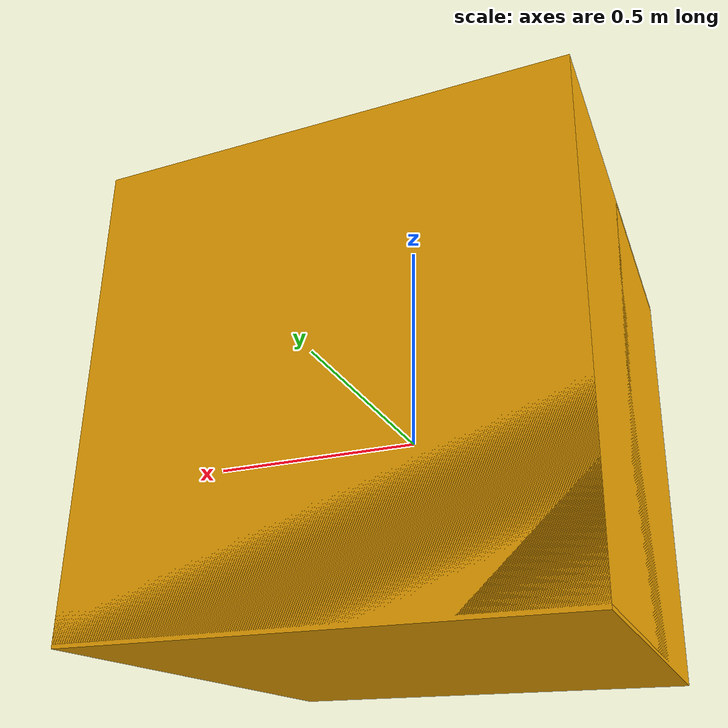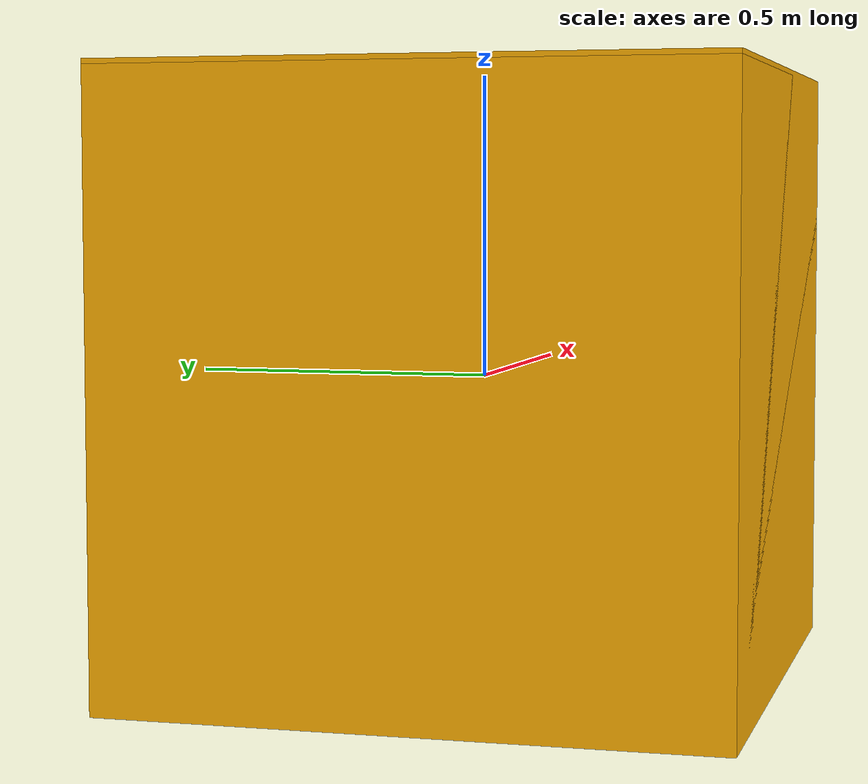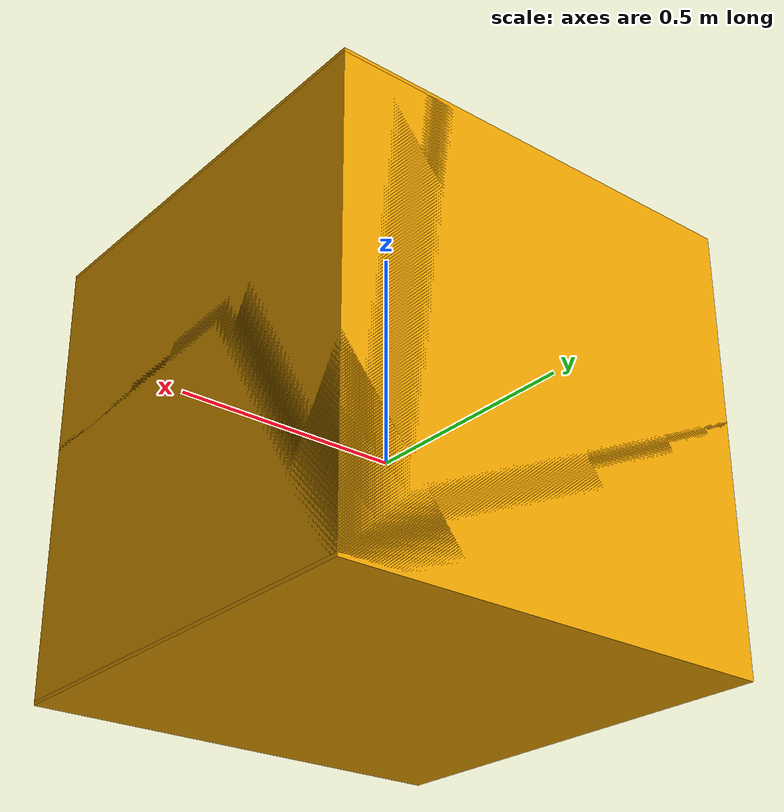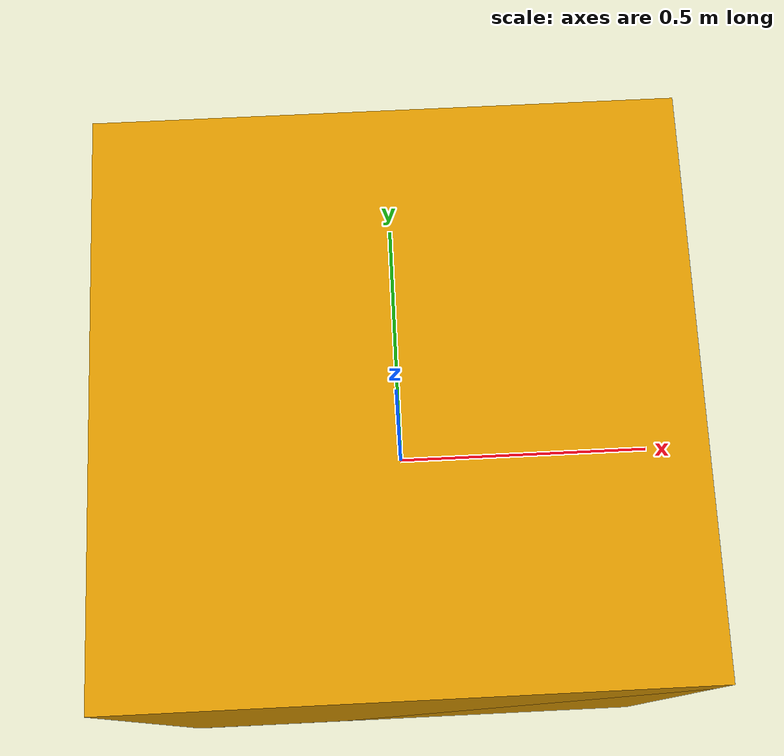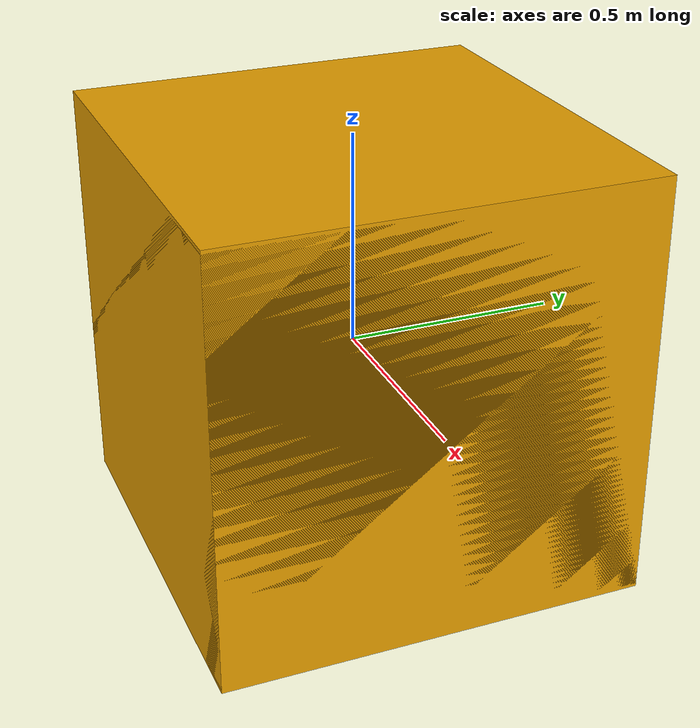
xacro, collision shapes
<?xml version="1.0"?>

<robot name="ranger_mini_v2"
    xmlns:xacro="http://ros.org/wiki/xacro">

    <xacro:include filename="$(find ranger_mini_v2)/urdf/ranger_l.xacro" />
    <xacro:include filename="$(find ranger_mini_v2)/urdf/ranger_r.xacro" />

    <!-- Variables -->
    <xacro:property name="M_PI" value="3.14159"/>

    <!-- Vehicle Geometries -->
    <xacro:property name="base_x_size" value="1.0" />
    <xacro:property name="base_y_size" value="0.380000" />
    <xacro:property name="base_z_size" value="0.210000" />

    <xacro:property name="wheelbase" value="0.498" />
    <xacro:property name="track" value="0.58306" />
    <xacro:property name="wheel_vertical_offset" value="-0.0702" />

    <xacro:property name="wheel_length" value="1.1653e-01" />
    <xacro:property name="wheel_radius" value="1.6459e-01" />

    <!-- Base link -->
    <link name="base_link">
        <visual>
            <origin xyz="0 0 0" rpy="1.57 0 3.14 " />
            <geometry>
                <mesh filename="package://ranger_mini_v2/meshes/ranger_base.dae" />
            </geometry>
        </visual>
        <collision>
            <origin xyz="0 0 0.008" rpy="0 0 0" />
            <geometry>
                <box size="1 1 1"/>
            </geometry>
        </collision>
        <collision>
            <origin xyz="0 0 0" rpy="0 0 0" />
            <geometry>
                <box size="1 1 1"/>
            </geometry>
        </collision>
    </link>

        <link name="fl_wheel_link">
            <inertial>
                <mass value="8" />
                <origin xyz="0 0 0" />
                <inertia ixx="0.1171" ixy="0" ixz="0" iyy="0.1361" iyz="0" izz="0.1171" />
            </inertial>
            <visual>
                <origin xyz="0.23 -0.2 0.1" rpy="1.57 0 0" />
                <geometry>
                    <mesh filename="package://ranger_mini_v2/meshes/fr.dae" />
                </geometry>
            </visual>
            <collision>
                <origin xyz="0 0 0" rpy="0 0 0" />
                <geometry>
                    <cylinder length="0.1" radius="0.1" />
                </geometry>
                     <contact>
                         <ode>
                        <min_depth>0.001</min_depth>
                         </ode>
                    </contact>
            </collision>
        </link>

        <joint name="fl_wheel" type="continuous">
            <origin xyz="0.23 0.206 -0.1" rpy="0 0 0" />
            <parent link="base_link"/>
            <child link="fl_wheel_link"/>
            <axis xyz="0 -1 0" rpy="0 0 0" />
        </joint>

        <link name="fr_wheel_link">
            <inertial>
                <mass value="8" />
                <origin xyz="0 0 0" />
                <inertia ixx="0.1171" ixy="0" ixz="0" iyy="0.1361" iyz="0" izz="0.1171" />
            </inertial>
            <visual>
                <origin xyz="0.23 0.2 0.1" rpy="1.57 0 0" />
                <geometry>
                    <mesh filename="package://ranger_mini_v2/meshes/fl.dae" />
                </geometry>
            </visual>
            <collision>
                <origin xyz="0 0 0" rpy="0 0 0" />
                <geometry>
                    <cylinder length="0.1" radius="0.1" />
                </geometry>
                     <contact>
                         <ode>
                        <min_depth>0.001</min_depth>
                         </ode>
                    </contact>
            </collision>
        </link>

        <joint name="fr_wheel" type="continuous">
            <origin xyz="0.23 -0.206 -0.1" rpy="0 0 0" />
            <parent link="base_link"/>
            <child link="fr_wheel_link"/>
            <axis xyz="0 -1 0" rpy="0 0 0" />
        </joint>

        <link name="rl_wheel_link">
            <inertial>
                <mass value="8" />
                <origin xyz="0 0 0" />
                <inertia ixx="0.1171" ixy="0" ixz="0" iyy="0.1361" iyz="0" izz="0.1171" />
            </inertial>
            <visual>
                <origin xyz="0.23 -0.2 0.1" rpy="1.57 0 0" />
                <geometry>
                    <mesh filename="package://ranger_mini_v2/meshes/fr.dae" />
                </geometry>
            </visual>
            <collision>
                <origin xyz="0 0 0" rpy="0 0 0" />
                <geometry>
                    <cylinder length="0.1" radius="0.1" />
                </geometry>
                     <contact>
                         <ode>
                        <min_depth>0.001</min_depth>
                         </ode>
                    </contact>
            </collision>
        </link>

        <joint name="rl_wheel" type="continuous">
            <origin xyz="-0.23 0.206 -0.1" rpy="0 0 0" />
            <parent link="base_link"/>
            <child link="rl_wheel_link"/>
            <axis xyz="0 -1 0" rpy="0 0 0" />
        </joint>

        <link name="rr_wheel_link">
            <inertial>
                <mass value="8" />
                <origin xyz="0 0 0" />
                <inertia ixx="0.1171" ixy="0" ixz="0" iyy="0.1361" iyz="0" izz="0.1171" />
            </inertial>
            <visual>
                <origin xyz="0.23 0.2 0.1" rpy="1.57 0 0" />
                <geometry>
                    <mesh filename="package://ranger_mini_v2/meshes/fl.dae" />
                </geometry>
            </visual>
            <collision>
                <origin xyz="0 0 0" rpy="0 0 0" />
                <geometry>
                    <cylinder length="0.1" radius="0.1" />
                </geometry>
                     <contact>
                         <ode>
                        <min_depth>0.001</min_depth>
                         </ode>
                    </contact>
            </collision>
        </link>

        <joint name="rr_wheel" type="continuous">
            <origin xyz="-0.23 -0.206 -0.1" rpy="0 0 0" />
            <parent link="base_link"/>
            <child link="rr_wheel_link"/>
            <axis xyz="0 -1 0" rpy="0 0 0" />
        </joint>

</robot>
